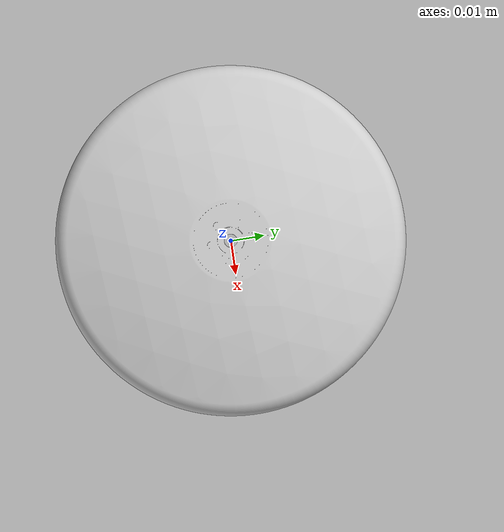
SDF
<?xml version="1.0" ?>
<sdf version="1.5">
  <plugin
      filename="ignition-gazebo-sensors-system"
      name="ignition::gazebo::systems::Sensors">
      <render_engine>ogre2</render_engine>
    </plugin>

  <model name="velodyne">

    <link name="top">
      <pose>0 0 0.036785 0 0 0</pose>
      <inertial>
        <mass>0.1</mass>
        <inertia>
          <ixx>0.000090623</ixx>
          <iyy>0.000090623</iyy>
          <izz>0.000091036</izz>
          <ixy>0</ixy>
          <ixz>0</ixz>
          <iyz>0</iyz>
        </inertia>
      </inertial>
      <collision name="top_collision">
        <geometry>
          <cylinder>
            <radius>0.04267</radius>
            <length>0.07357</length>
          </cylinder>
        </geometry>
      </collision>
      <visual name="top_visual">
        <pose>0 0 -0.0376785 0 0 1.5707</pose>
        <geometry>
          <mesh>
            <uri>model://velodyne_hdl32/meshes/velodyne_top.dae</uri>
          </mesh>
        </geometry>
      </visual>
      <sensor name='gpu_lidar' type='gpu_lidar'>
          <topic>lidar</topic>
          <pose>0 0 0.029335 0 0 0</pose>
          <update_rate>10</update_rate>
          <ray>
            <noise>
              <type>gaussian</type>
              <mean>0.0</mean>
              <stddev>0.02</stddev>
            </noise>
            <scan>
                <horizontal>
                <samples>512</samples>
                <resolution>1</resolution>
                <min_angle>-3.14159</min_angle>
                <max_angle>3.14159</max_angle>
              </horizontal>
              <vertical>
                <samples>16</samples>
                <resolution>1</resolution>
                <min_angle>-0.2897247</min_angle>
                <max_angle>0.2897247</max_angle>
              </vertical>
            </scan>
            <range>
              <min>0.08</min>
              <max>10.0</max>
              <resolution>0.01</resolution>
            </range>
          </ray>
          <alwaysOn>1</alwaysOn>
          <visualize>true</visualize>
        </sensor>
    </link>
  </model>
</sdf>
